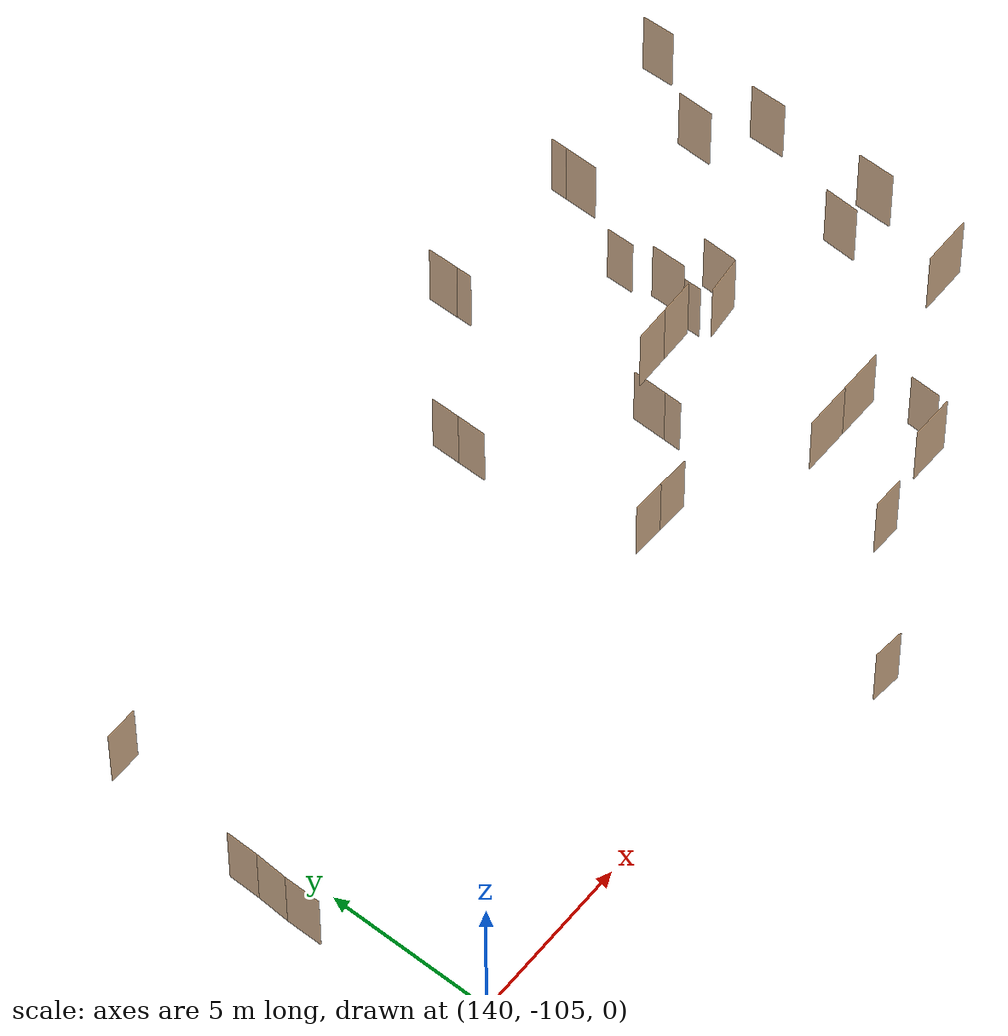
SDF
<sdf version="1.7">
 <world name="sim_world">
  <model name="puerta74">
   <pose>159.7936923329364 -103.79587595033634 0.0 0 0 3.1317567962634545</pose>
   <link name="right">
    <pose>0 0 1.11 0 0 0</pose>
    <visual name="right_visual">
     <geometry><box><size>1.256180677242002 0.03 2.2</size></box></geometry>
     <material>
      <ambient>0.5 0.25 0 0.6</ambient>
      <diffuse>0.5 0.25 0 0.6</diffuse>
      <pbr><metal><metalness>0.0</metalness></metal></pbr>
     </material>
    </visual>
    <collision name="right_collision">
     <geometry><box><size>1.256180677242002 0.03 2.2</size></box></geometry>
     <surface><contact><collide_bitmask>0x02</collide_bitmask></contact></surface>
    </collision>
    <inertial>
     <mass>50.0</mass>
     <inertia><ixx>20.17041666666667</ixx><iyy>26.741624557817403</iyy><izz>6.57870789115073</izz></inertia>
    </inertial>
   </link>
   <joint name="right_joint" type="revolute">
    <parent>world</parent>
    <child>right</child>
    <axis><xyz>0 0 -1</xyz><limit><lower>0</lower><upper>1.57</upper></limit></axis>
    <pose>0.6330903386210011 0 0 0 0 0</pose>
   </joint>
   <plugin name="register_component" filename="libregister_component.so">
    <component name="Door">
     <v_max_door>0.5</v_max_door>
     <a_max_door>0.3</a_max_door>
     <a_nom_door>0.15</a_nom_door>
     <dx_min_door>0.01</dx_min_door>
     <f_max_door>500.0</f_max_door>
     <ros_interface>true</ros_interface>
     <door name="puerta74" type="SwingDoor" left_joint_name="empty_joint" right_joint_name="right_joint"/>
    </component>
   </plugin>
  </model>
  <model name="puerta75">
   <pose>160.438532642766 -103.07871120292492 0.0 0 0 -1.5966220334203785</pose>
   <link name="right">
    <pose>0 0 1.11 0 0 0</pose>
    <visual name="right_visual">
     <geometry><box><size>0.9024168142661404 0.03 2.2</size></box></geometry>
     <material>
      <ambient>0.5 0.25 0 0.6</ambient>
      <diffuse>0.5 0.25 0 0.6</diffuse>
      <pbr><metal><metalness>0.0</metalness></metal></pbr>
     </material>
    </visual>
    <collision name="right_collision">
     <geometry><box><size>0.9024168142661404 0.03 2.2</size></box></geometry>
     <surface><contact><collide_bitmask>0x02</collide_bitmask></contact></surface>
    </collision>
    <inertial>
     <mass>50.0</mass>
     <inertia><ixx>20.17041666666667</ixx><iyy>23.559817111126044</iyy><izz>3.3969004444593742</izz></inertia>
    </inertial>
   </link>
   <joint name="right_joint" type="revolute">
    <parent>world</parent>
    <child>right</child>
    <axis><xyz>0 0 -1</xyz><limit><lower>0</lower><upper>1.57</upper></limit></axis>
    <pose>0.4562084071330702 0 0 0 0 0</pose>
   </joint>
   <plugin name="register_component" filename="libregister_component.so">
    <component name="Door">
     <v_max_door>0.5</v_max_door>
     <a_max_door>0.3</a_max_door>
     <a_nom_door>0.15</a_nom_door>
     <dx_min_door>0.01</dx_min_door>
     <f_max_door>500.0</f_max_door>
     <ros_interface>true</ros_interface>
     <door name="puerta75" type="SwingDoor" left_joint_name="empty_joint" right_joint_name="right_joint"/>
    </component>
   </plugin>
  </model>
  <model name="puerta76">
   <pose>159.75077730889134 -101.48174638903727 0.0 0 0 3.141592653589793</pose>
   <link name="right">
    <pose>0 0 1.11 0 0 0</pose>
    <visual name="right_visual">
     <geometry><box><size>1.3252042039894059 0.03 2.2</size></box></geometry>
     <material>
      <ambient>0.5 0.25 0 0.6</ambient>
      <diffuse>0.5 0.25 0 0.6</diffuse>
      <pbr><metal><metalness>0.0</metalness></metal></pbr>
     </material>
    </visual>
    <collision name="right_collision">
     <geometry><box><size>1.3252042039894059 0.03 2.2</size></box></geometry>
     <surface><contact><collide_bitmask>0x02</collide_bitmask></contact></surface>
    </collision>
    <inertial>
     <mass>50.0</mass>
     <inertia><ixx>20.17041666666667</ixx><iyy>27.484025759463318</iyy><izz>7.321109092796646</izz></inertia>
    </inertial>
   </link>
   <joint name="right_joint" type="revolute">
    <parent>world</parent>
    <child>right</child>
    <axis><xyz>0 0 -1</xyz><limit><lower>0</lower><upper>1.57</upper></limit></axis>
    <pose>0.6676021019947029 0 0 0 0 0</pose>
   </joint>
   <plugin name="register_component" filename="libregister_component.so">
    <component name="Door">
     <v_max_door>0.5</v_max_door>
     <a_max_door>0.3</a_max_door>
     <a_nom_door>0.15</a_nom_door>
     <dx_min_door>0.01</dx_min_door>
     <f_max_door>500.0</f_max_door>
     <ros_interface>true</ros_interface>
     <door name="puerta76" type="SwingDoor" left_joint_name="empty_joint" right_joint_name="right_joint"/>
    </component>
   </plugin>
  </model>
  <model name="puerta77">
   <pose>158.38399690338645 -101.48174638903727 0.0 0 0 0.0</pose>
   <link name="right">
    <pose>0 0 1.11 0 0 0</pose>
    <visual name="right_visual">
     <geometry><box><size>1.3883566070203892 0.03 2.2</size></box></geometry>
     <material>
      <ambient>0.5 0.25 0 0.6</ambient>
      <diffuse>0.5 0.25 0 0.6</diffuse>
      <pbr><metal><metalness>0.0</metalness></metal></pbr>
     </material>
    </visual>
    <collision name="right_collision">
     <geometry><box><size>1.3883566070203892 0.03 2.2</size></box></geometry>
     <surface><contact><collide_bitmask>0x02</collide_bitmask></contact></surface>
    </collision>
    <inertial>
     <mass>50.0</mass>
     <inertia><ixx>20.17041666666667</ixx><iyy>28.1980586177382</iyy><izz>8.03514195107153</izz></inertia>
    </inertial>
   </link>
   <joint name="right_joint" type="revolute">
    <parent>world</parent>
    <child>right</child>
    <axis><xyz>0 0 -1</xyz><limit><lower>0</lower><upper>1.57</upper></limit></axis>
    <pose>0.6991783035101946 0 0 0 0 0</pose>
   </joint>
   <plugin name="register_component" filename="libregister_component.so">
    <component name="Door">
     <v_max_door>0.5</v_max_door>
     <a_max_door>0.3</a_max_door>
     <a_nom_door>0.15</a_nom_door>
     <dx_min_door>0.01</dx_min_door>
     <f_max_door>500.0</f_max_door>
     <ros_interface>true</ros_interface>
     <door name="puerta77" type="SwingDoor" left_joint_name="empty_joint" right_joint_name="right_joint"/>
    </component>
   </plugin>
  </model>
  <model name="puerta78">
   <pose>159.89001973249628 -96.8544759949343 0.0 0 0 0.10396412360311867</pose>
   <link name="right">
    <pose>0 0 1.11 0 0 0</pose>
    <visual name="right_visual">
     <geometry><box><size>1.1166703581580366 0.03 2.2</size></box></geometry>
     <material>
      <ambient>0.5 0.25 0 0.6</ambient>
      <diffuse>0.5 0.25 0 0.6</diffuse>
      <pbr><metal><metalness>0.0</metalness></metal></pbr>
     </material>
    </visual>
    <collision name="right_collision">
     <geometry><box><size>1.1166703581580366 0.03 2.2</size></box></geometry>
     <surface><contact><collide_bitmask>0x02</collide_bitmask></contact></surface>
    </collision>
    <inertial>
     <mass>50.0</mass>
     <inertia><ixx>20.17041666666667</ixx><iyy>25.36230286995333</iyy><izz>5.199386203286657</izz></inertia>
    </inertial>
   </link>
   <joint name="right_joint" type="revolute">
    <parent>world</parent>
    <child>right</child>
    <axis><xyz>0 0 1</xyz><limit><lower>0</lower><upper>1.3955555555555557</upper></limit></axis>
    <pose>0.5633351790790183 0 0 0 0 0</pose>
   </joint>
   <plugin name="register_component" filename="libregister_component.so">
    <component name="Door">
     <v_max_door>0.5</v_max_door>
     <a_max_door>0.3</a_max_door>
     <a_nom_door>0.15</a_nom_door>
     <dx_min_door>0.01</dx_min_door>
     <f_max_door>500.0</f_max_door>
     <ros_interface>true</ros_interface>
     <door name="puerta78" type="SwingDoor" left_joint_name="empty_joint" right_joint_name="right_joint"/>
    </component>
   </plugin>
  </model>
  <model name="puerta79">
   <pose>160.46398714232214 -96.26128097139416 0.0 0 0 -1.596362178234018</pose>
   <link name="right">
    <pose>0 0 1.11 0 0 0</pose>
    <visual name="right_visual">
     <geometry><box><size>1.0598172473930818 0.03 2.2</size></box></geometry>
     <material>
      <ambient>0.5 0.25 0 0.6</ambient>
      <diffuse>0.5 0.25 0 0.6</diffuse>
      <pbr><metal><metalness>0.0</metalness></metal></pbr>
     </material>
    </visual>
    <collision name="right_collision">
     <geometry><box><size>1.0598172473930818 0.03 2.2</size></box></geometry>
     <surface><contact><collide_bitmask>0x02</collide_bitmask></contact></surface>
    </collision>
    <inertial>
     <mass>50.0</mass>
     <inertia><ixx>20.17041666666667</ixx><iyy>24.846719157799374</iyy><izz>4.683802491132703</izz></inertia>
    </inertial>
   </link>
   <joint name="right_joint" type="revolute">
    <parent>world</parent>
    <child>right</child>
    <axis><xyz>0 0 -1</xyz><limit><lower>0</lower><upper>1.57</upper></limit></axis>
    <pose>0.5349086236965409 0 0 0 0 0</pose>
   </joint>
   <plugin name="register_component" filename="libregister_component.so">
    <component name="Door">
     <v_max_door>0.5</v_max_door>
     <a_max_door>0.3</a_max_door>
     <a_nom_door>0.15</a_nom_door>
     <dx_min_door>0.01</dx_min_door>
     <f_max_door>500.0</f_max_door>
     <ros_interface>true</ros_interface>
     <door name="puerta79" type="SwingDoor" left_joint_name="empty_joint" right_joint_name="right_joint"/>
    </component>
   </plugin>
  </model>
  <model name="puerta80">
   <pose>159.1357461113518 -96.21222320861327 0.0 0 0 -1.5533127589746702</pose>
   <link name="right">
    <pose>0 0 1.11 0 0 0</pose>
    <visual name="right_visual">
     <geometry><box><size>0.8732167888799909 0.03 2.2</size></box></geometry>
     <material>
      <ambient>0.5 0.25 0 0.6</ambient>
      <diffuse>0.5 0.25 0 0.6</diffuse>
      <pbr><metal><metalness>0.0</metalness></metal></pbr>
     </material>
    </visual>
    <collision name="right_collision">
     <geometry><box><size>0.8732167888799909 0.03 2.2</size></box></geometry>
     <surface><contact><collide_bitmask>0x02</collide_bitmask></contact></surface>
    </collision>
    <inertial>
     <mass>50.0</mass>
     <inertia><ixx>20.17041666666667</ixx><iyy>23.34378150159118</iyy><izz>3.180864834924511</izz></inertia>
    </inertial>
   </link>
   <joint name="right_joint" type="revolute">
    <parent>world</parent>
    <child>right</child>
    <axis><xyz>0 0 1</xyz><limit><lower>0</lower><upper>1.57</upper></limit></axis>
    <pose>0.44160839443999544 0 0 0 0 0</pose>
   </joint>
   <plugin name="register_component" filename="libregister_component.so">
    <component name="Door">
     <v_max_door>0.5</v_max_door>
     <a_max_door>0.3</a_max_door>
     <a_nom_door>0.15</a_nom_door>
     <dx_min_door>0.01</dx_min_door>
     <f_max_door>500.0</f_max_door>
     <ros_interface>true</ros_interface>
     <door name="puerta80" type="SwingDoor" left_joint_name="empty_joint" right_joint_name="right_joint"/>
    </component>
   </plugin>
  </model>
  <model name="puerta81">
   <pose>159.12099933103045 -93.97853828062215 0.0 0 0 1.587739558421069</pose>
   <link name="right">
    <pose>0 0 1.11 0 0 0</pose>
    <visual name="right_visual">
     <geometry><box><size>0.8194308536880951 0.03 2.2</size></box></geometry>
     <material>
      <ambient>0.5 0.25 0 0.6</ambient>
      <diffuse>0.5 0.25 0 0.6</diffuse>
      <pbr><metal><metalness>0.0</metalness></metal></pbr>
     </material>
    </visual>
    <collision name="right_collision">
     <geometry><box><size>0.8194308536880951 0.03 2.2</size></box></geometry>
     <surface><contact><collide_bitmask>0x02</collide_bitmask></contact></surface>
    </collision>
    <inertial>
     <mass>50.0</mass>
     <inertia><ixx>20.17041666666667</ixx><iyy>22.964445516566673</iyy><izz>2.8015288499000013</izz></inertia>
    </inertial>
   </link>
   <joint name="right_joint" type="revolute">
    <parent>world</parent>
    <child>right</child>
    <axis><xyz>0 0 -1</xyz><limit><lower>0</lower><upper>1.57</upper></limit></axis>
    <pose>0.41471542684404755 0 0 0 0 0</pose>
   </joint>
   <plugin name="register_component" filename="libregister_component.so">
    <component name="Door">
     <v_max_door>0.5</v_max_door>
     <a_max_door>0.3</a_max_door>
     <a_nom_door>0.15</a_nom_door>
     <dx_min_door>0.01</dx_min_door>
     <f_max_door>500.0</f_max_door>
     <ros_interface>true</ros_interface>
     <door name="puerta81" type="SwingDoor" left_joint_name="empty_joint" right_joint_name="right_joint"/>
    </component>
   </plugin>
  </model>
  <model name="puerta105">
   <pose>152.07287980848113 -94.21486542774073 0.0 0 0 -1.5707963267948966</pose>
   <link name="right">
    <pose>0.43580838021028256 0 1.11 0 0 0</pose>
    <visual name="right_visual">
     <geometry><box><size>0.8616167604205651 0.03 2.2</size></box></geometry>
     <material>
      <ambient>0.5 0.25 0 0.6</ambient>
      <diffuse>0.5 0.25 0 0.6</diffuse>
      <pbr><metal><metalness>0.0</metalness></metal></pbr>
     </material>
    </visual>
    <collision name="right_collision">
     <geometry><box><size>0.8616167604205651 0.03 2.2</size></box></geometry>
     <surface><contact><collide_bitmask>0x02</collide_bitmask></contact></surface>
    </collision>
    <inertial>
     <mass>50.0</mass>
     <inertia><ixx>20.17041666666667</ixx><iyy>23.259931007656796</iyy><izz>3.097014340990123</izz></inertia>
    </inertial>
   </link>
   <joint name="right_joint" type="revolute">
    <parent>world</parent>
    <child>right</child>
    <axis><xyz>0 0 -1</xyz><limit><lower>0</lower><upper>1.57</upper></limit></axis>
    <pose>0.43580838021028256 0 0 0 0 0</pose>
   </joint>
   <link name="left">
    <pose>-0.43580838021028256 0 1.11 0 0 0</pose>
    <visual name="left_visual">
     <geometry><box><size>0.8616167604205651 0.03 2.2</size></box></geometry>
     <material>
      <ambient>0.5 0.25 0 0.6</ambient>
      <diffuse>0.5 0.25 0 0.6</diffuse>
      <pbr><metal><metalness>0.0</metalness></metal></pbr>
     </material>
    </visual>
    <collision name="left_collision">
     <geometry><box><size>0.8616167604205651 0.03 2.2</size></box></geometry>
     <surface><contact><collide_bitmask>0x02</collide_bitmask></contact></surface>
    </collision>
    <inertial>
     <mass>50.0</mass>
     <inertia><ixx>20.17041666666667</ixx><iyy>23.259931007656796</iyy><izz>3.097014340990123</izz></inertia>
    </inertial>
   </link>
   <joint name="left_joint" type="revolute">
    <parent>world</parent>
    <child>left</child>
    <axis><xyz>0 0 -1</xyz><limit><lower>-1.57</lower><upper>0</upper></limit></axis>
    <pose>-0.43580838021028256 0 0 0 0 0</pose>
   </joint>
   <plugin name="register_component" filename="libregister_component.so">
    <component name="Door">
     <v_max_door>0.5</v_max_door>
     <a_max_door>0.3</a_max_door>
     <a_nom_door>0.15</a_nom_door>
     <dx_min_door>0.01</dx_min_door>
     <f_max_door>500.0</f_max_door>
     <ros_interface>true</ros_interface>
     <door name="puerta105" type="DoubleSwingDoor" left_joint_name="left_joint" right_joint_name="right_joint"/>
    </component>
   </plugin>
  </model>
  <model name="puerta106">
   <pose>153.74871149743979 -99.59914422393224 0.0 0 0 3.1137868440150647</pose>
   <link name="right">
    <pose>0.48161280064913925 0 1.11 0 0 0</pose>
    <visual name="right_visual">
     <geometry><box><size>0.9532256012982785 0.03 2.2</size></box></geometry>
     <material>
      <ambient>0.5 0.25 0 0.6</ambient>
      <diffuse>0.5 0.25 0 0.6</diffuse>
      <pbr><metal><metalness>0.0</metalness></metal></pbr>
     </material>
    </visual>
    <collision name="right_collision">
     <geometry><box><size>0.9532256012982785 0.03 2.2</size></box></geometry>
     <surface><contact><collide_bitmask>0x02</collide_bitmask></contact></surface>
    </collision>
    <inertial>
     <mass>50.0</mass>
     <inertia><ixx>20.17041666666667</ixx><iyy>23.952662695710274</iyy><izz>3.7897460290436027</izz></inertia>
    </inertial>
   </link>
   <joint name="right_joint" type="revolute">
    <parent>world</parent>
    <child>right</child>
    <axis><xyz>0 0 -1</xyz><limit><lower>0</lower><upper>1.57</upper></limit></axis>
    <pose>0.48161280064913925 0 0 0 0 0</pose>
   </joint>
   <link name="left">
    <pose>-0.48161280064913925 0 1.11 0 0 0</pose>
    <visual name="left_visual">
     <geometry><box><size>0.9532256012982785 0.03 2.2</size></box></geometry>
     <material>
      <ambient>0.5 0.25 0 0.6</ambient>
      <diffuse>0.5 0.25 0 0.6</diffuse>
      <pbr><metal><metalness>0.0</metalness></metal></pbr>
     </material>
    </visual>
    <collision name="left_collision">
     <geometry><box><size>0.9532256012982785 0.03 2.2</size></box></geometry>
     <surface><contact><collide_bitmask>0x02</collide_bitmask></contact></surface>
    </collision>
    <inertial>
     <mass>50.0</mass>
     <inertia><ixx>20.17041666666667</ixx><iyy>23.952662695710274</iyy><izz>3.7897460290436027</izz></inertia>
    </inertial>
   </link>
   <joint name="left_joint" type="revolute">
    <parent>world</parent>
    <child>left</child>
    <axis><xyz>0 0 -1</xyz><limit><lower>-1.57</lower><upper>0</upper></limit></axis>
    <pose>-0.48161280064913925 0 0 0 0 0</pose>
   </joint>
   <plugin name="register_component" filename="libregister_component.so">
    <component name="Door">
     <v_max_door>0.5</v_max_door>
     <a_max_door>0.3</a_max_door>
     <a_nom_door>0.15</a_nom_door>
     <dx_min_door>0.01</dx_min_door>
     <f_max_door>500.0</f_max_door>
     <ros_interface>true</ros_interface>
     <door name="puerta106" type="DoubleSwingDoor" left_joint_name="left_joint" right_joint_name="right_joint"/>
    </component>
   </plugin>
  </model>
  <model name="puerta107">
   <pose>153.63307233705962 -107.09196016476 0.0 0 0 3.055489605000088</pose>
   <link name="right">
    <pose>0 0 1.11 0 0 0</pose>
    <visual name="right_visual">
     <geometry><box><size>0.913696730952834 0.03 2.2</size></box></geometry>
     <material>
      <ambient>0.5 0.25 0 0.6</ambient>
      <diffuse>0.5 0.25 0 0.6</diffuse>
      <pbr><metal><metalness>0.0</metalness></metal></pbr>
     </material>
    </visual>
    <collision name="right_collision">
     <geometry><box><size>0.913696730952834 0.03 2.2</size></box></geometry>
     <surface><contact><collide_bitmask>0x02</collide_bitmask></contact></surface>
    </collision>
    <inertial>
     <mass>50.0</mass>
     <inertia><ixx>20.17041666666667</ixx><iyy>23.645173817307903</iyy><izz>3.482257150641231</izz></inertia>
    </inertial>
   </link>
   <joint name="right_joint" type="revolute">
    <parent>world</parent>
    <child>right</child>
    <axis><xyz>0 0 1</xyz><limit><lower>0</lower><upper>1.57</upper></limit></axis>
    <pose>0.461848365476417 0 0 0 0 0</pose>
   </joint>
   <plugin name="register_component" filename="libregister_component.so">
    <component name="Door">
     <v_max_door>0.5</v_max_door>
     <a_max_door>0.3</a_max_door>
     <a_nom_door>0.15</a_nom_door>
     <dx_min_door>0.01</dx_min_door>
     <f_max_door>500.0</f_max_door>
     <ros_interface>true</ros_interface>
     <door name="puerta107" type="SwingDoor" left_joint_name="empty_joint" right_joint_name="right_joint"/>
    </component>
   </plugin>
  </model>
  <model name="puerta108">
   <pose>139.5671052133339 -93.43841904417299 0.0 0 0 0.00852679551711092</pose>
   <link name="right">
    <pose>0 0 1.11 0 0 0</pose>
    <visual name="right_visual">
     <geometry><box><size>0.9966042746061976 0.03 2.2</size></box></geometry>
     <material>
      <ambient>0.5 0.25 0 0.6</ambient>
      <diffuse>0.5 0.25 0 0.6</diffuse>
      <pbr><metal><metalness>0.0</metalness></metal></pbr>
     </material>
    </visual>
    <collision name="right_collision">
     <geometry><box><size>0.9966042746061976 0.03 2.2</size></box></geometry>
     <surface><contact><collide_bitmask>0x02</collide_bitmask></contact></surface>
    </collision>
    <inertial>
     <mass>50.0</mass>
     <inertia><ixx>20.17041666666667</ixx><iyy>24.305083667347276</iyy><izz>4.1421670006806055</izz></inertia>
    </inertial>
   </link>
   <joint name="right_joint" type="revolute">
    <parent>world</parent>
    <child>right</child>
    <axis><xyz>0 0 -1</xyz><limit><lower>0</lower><upper>1.57</upper></limit></axis>
    <pose>0.5033021373030988 0 0 0 0 0</pose>
   </joint>
   <plugin name="register_component" filename="libregister_component.so">
    <component name="Door">
     <v_max_door>0.5</v_max_door>
     <a_max_door>0.3</a_max_door>
     <a_nom_door>0.15</a_nom_door>
     <dx_min_door>0.01</dx_min_door>
     <f_max_door>500.0</f_max_door>
     <ros_interface>true</ros_interface>
     <door name="puerta108" type="SwingDoor" left_joint_name="empty_joint" right_joint_name="right_joint"/>
    </component>
   </plugin>
  </model>
  <model name="puerta158">
   <pose>138.77877305104778 -100.06268959394811 0.0 0 0 1.5707963267948966</pose>
   <link name="right">
    <pose>0 0 1.11 0 0 0</pose>
    <visual name="right_visual">
     <geometry><box><size>1.0825660239230268 0.03 2.2</size></box></geometry>
     <material>
      <ambient>0.5 0.25 0 0.6</ambient>
      <diffuse>0.5 0.25 0 0.6</diffuse>
      <pbr><metal><metalness>0.0</metalness></metal></pbr>
     </material>
    </visual>
    <collision name="right_collision">
     <geometry><box><size>1.0825660239230268 0.03 2.2</size></box></geometry>
     <surface><contact><collide_bitmask>0x02</collide_bitmask></contact></surface>
    </collision>
    <inertial>
     <mass>50.0</mass>
     <inertia><ixx>20.17041666666667</ixx><iyy>25.049788317302138</iyy><izz>4.886871650635465</izz></inertia>
    </inertial>
   </link>
   <joint name="right_joint" type="revolute">
    <parent>world</parent>
    <child>right</child>
    <axis><xyz>0 0 1</xyz><limit><lower>0</lower><upper>1.57</upper></limit></axis>
    <pose>0.5462830119615134 0 0 0 0 0</pose>
   </joint>
   <plugin name="register_component" filename="libregister_component.so">
    <component name="Door">
     <v_max_door>0.5</v_max_door>
     <a_max_door>0.3</a_max_door>
     <a_nom_door>0.15</a_nom_door>
     <dx_min_door>0.01</dx_min_door>
     <f_max_door>500.0</f_max_door>
     <ros_interface>true</ros_interface>
     <door name="puerta158" type="SwingDoor" left_joint_name="empty_joint" right_joint_name="right_joint"/>
    </component>
   </plugin>
  </model>
  <model name="puerta159">
   <pose>138.80753032451327 -99.02761708017954 0.0 0 0 1.5120304122943606</pose>
   <link name="right">
    <pose>0 0 1.11 0 0 0</pose>
    <visual name="right_visual">
     <geometry><box><size>0.969269437599189 0.03 2.2</size></box></geometry>
     <material>
      <ambient>0.5 0.25 0 0.6</ambient>
      <diffuse>0.5 0.25 0 0.6</diffuse>
      <pbr><metal><metalness>0.0</metalness></metal></pbr>
     </material>
    </visual>
    <collision name="right_collision">
     <geometry><box><size>0.969269437599189 0.03 2.2</size></box></geometry>
     <surface><contact><collide_bitmask>0x02</collide_bitmask></contact></surface>
    </collision>
    <inertial>
     <mass>50.0</mass>
     <inertia><ixx>20.17041666666667</ixx><iyy>24.08118017776604</iyy><izz>3.9182635110993678</izz></inertia>
    </inertial>
   </link>
   <joint name="right_joint" type="revolute">
    <parent>world</parent>
    <child>right</child>
    <axis><xyz>0 0 1</xyz><limit><lower>0</lower><upper>1.57</upper></limit></axis>
    <pose>0.4896347187995945 0 0 0 0 0</pose>
   </joint>
   <plugin name="register_component" filename="libregister_component.so">
    <component name="Door">
     <v_max_door>0.5</v_max_door>
     <a_max_door>0.3</a_max_door>
     <a_nom_door>0.15</a_nom_door>
     <dx_min_door>0.01</dx_min_door>
     <f_max_door>500.0</f_max_door>
     <ros_interface>true</ros_interface>
     <door name="puerta159" type="SwingDoor" left_joint_name="empty_joint" right_joint_name="right_joint"/>
    </component>
   </plugin>
  </model>
  <model name="puerta160">
   <pose>138.84232515283213 -98.04970148814152 0.0 0 0 1.5584533985235027</pose>
   <link name="right">
    <pose>0 0 1.11 0 0 0</pose>
    <visual name="right_visual">
     <geometry><box><size>0.9683267025144926 0.03 2.2</size></box></geometry>
     <material>
      <ambient>0.5 0.25 0 0.6</ambient>
      <diffuse>0.5 0.25 0 0.6</diffuse>
      <pbr><metal><metalness>0.0</metalness></metal></pbr>
     </material>
    </visual>
    <collision name="right_collision">
     <geometry><box><size>0.9683267025144926 0.03 2.2</size></box></geometry>
     <surface><contact><collide_bitmask>0x02</collide_bitmask></contact></surface>
    </collision>
    <inertial>
     <mass>50.0</mass>
     <inertia><ixx>20.17041666666667</ixx><iyy>24.073569178344133</iyy><izz>3.9106525116774615</izz></inertia>
    </inertial>
   </link>
   <joint name="right_joint" type="revolute">
    <parent>world</parent>
    <child>right</child>
    <axis><xyz>0 0 1</xyz><limit><lower>0</lower><upper>1.57</upper></limit></axis>
    <pose>0.4891633512572463 0 0 0 0 0</pose>
   </joint>
   <plugin name="register_component" filename="libregister_component.so">
    <component name="Door">
     <v_max_door>0.5</v_max_door>
     <a_max_door>0.3</a_max_door>
     <a_nom_door>0.15</a_nom_door>
     <dx_min_door>0.01</dx_min_door>
     <f_max_door>500.0</f_max_door>
     <ros_interface>true</ros_interface>
     <door name="puerta160" type="SwingDoor" left_joint_name="empty_joint" right_joint_name="right_joint"/>
    </component>
   </plugin>
  </model>
  <model name="puerta171">
   <pose>156.02320777182666 -97.68711160851396 0.0 0 0 1.5575365947351327</pose>
   <link name="right">
    <pose>0.2580808248521973 0 1.11 0 0 0</pose>
    <visual name="right_visual">
     <geometry><box><size>1.022323299408789 0.03 2.2</size></box></geometry>
     <material>
      <ambient>0.5 0.25 0 0.6</ambient>
      <diffuse>0.5 0.25 0 0.6</diffuse>
      <pbr><metal><metalness>0.0</metalness></metal></pbr>
     </material>
    </visual>
    <collision name="right_collision">
     <geometry><box><size>1.022323299408789 0.03 2.2</size></box></geometry>
     <surface><contact><collide_bitmask>0x02</collide_bitmask></contact></surface>
    </collision>
    <inertial>
     <mass>50.0</mass>
     <inertia><ixx>20.17041666666667</ixx><iyy>24.52143720214197</iyy><izz>4.358520535475302</izz></inertia>
    </inertial>
   </link>
   <joint name="right_joint" type="revolute">
    <parent>world</parent>
    <child>right</child>
    <axis><xyz>0 0 -1</xyz><limit><lower>0</lower><upper>1.57</upper></limit></axis>
    <pose>0.5161616497043945 0 0 0 0 0</pose>
   </joint>
   <link name="left">
    <pose>-0.5161616497043945 0 1.11 0 0 0</pose>
    <visual name="left_visual">
     <geometry><box><size>0.5061616497043946 0.03 2.2</size></box></geometry>
     <material>
      <ambient>0.5 0.25 0 0.6</ambient>
      <diffuse>0.5 0.25 0 0.6</diffuse>
      <pbr><metal><metalness>0.0</metalness></metal></pbr>
     </material>
    </visual>
    <collision name="left_collision">
     <geometry><box><size>0.5061616497043946 0.03 2.2</size></box></geometry>
     <surface><contact><collide_bitmask>0x02</collide_bitmask></contact></surface>
    </collision>
    <inertial>
     <mass>50.0</mass>
     <inertia><ixx>20.17041666666667</ixx><iyy>21.234165065131148</iyy><izz>1.0712483984644763</izz></inertia>
    </inertial>
   </link>
   <joint name="left_joint" type="revolute">
    <parent>world</parent>
    <child>left</child>
    <axis><xyz>0 0 -1</xyz><limit><lower>-1.57</lower><upper>0</upper></limit></axis>
    <pose>-0.2580808248521973 0 0 0 0 0</pose>
   </joint>
   <plugin name="register_component" filename="libregister_component.so">
    <component name="Door">
     <v_max_door>0.5</v_max_door>
     <a_max_door>0.3</a_max_door>
     <a_nom_door>0.15</a_nom_door>
     <dx_min_door>0.01</dx_min_door>
     <f_max_door>500.0</f_max_door>
     <ros_interface>true</ros_interface>
     <door name="puerta171" type="DoubleSwingDoor" left_joint_name="left_joint" right_joint_name="right_joint"/>
    </component>
   </plugin>
  </model>
  <model name="puerta230">
   <pose>151.5194652632749 -94.49645380366556 8.0 0 0 1.5849158112830648</pose>
   <link name="right">
    <pose>0.21981165551356635 0 1.11 0 0 0</pose>
    <visual name="right_visual">
     <geometry><box><size>0.8692466220542653 0.03 2.2</size></box></geometry>
     <material>
      <ambient>0.5 0.25 0 0.6</ambient>
      <diffuse>0.5 0.25 0 0.6</diffuse>
      <pbr><metal><metalness>0.0</metalness></metal></pbr>
     </material>
    </visual>
    <collision name="right_collision">
     <geometry><box><size>0.8692466220542653 0.03 2.2</size></box></geometry>
     <surface><contact><collide_bitmask>0x02</collide_bitmask></contact></surface>
    </collision>
    <inertial>
     <mass>50.0</mass>
     <inertia><ixx>20.17041666666667</ixx><iyy>23.3149570414698</iyy><izz>3.152040374803128</izz></inertia>
    </inertial>
   </link>
   <joint name="right_joint" type="revolute">
    <parent>world</parent>
    <child>right</child>
    <axis><xyz>0 0 1</xyz><limit><lower>0</lower><upper>1.57</upper></limit></axis>
    <pose>0.43962331102713265 0 0 0 0 0</pose>
   </joint>
   <link name="left">
    <pose>-0.43962331102713265 0 1.11 0 0 0</pose>
    <visual name="left_visual">
     <geometry><box><size>0.4296233110271327 0.03 2.2</size></box></geometry>
     <material>
      <ambient>0.5 0.25 0 0.6</ambient>
      <diffuse>0.5 0.25 0 0.6</diffuse>
      <pbr><metal><metalness>0.0</metalness></metal></pbr>
     </material>
    </visual>
    <collision name="left_collision">
     <geometry><box><size>0.4296233110271327 0.03 2.2</size></box></geometry>
     <surface><contact><collide_bitmask>0x02</collide_bitmask></contact></surface>
    </collision>
    <inertial>
     <mass>50.0</mass>
     <inertia><ixx>20.17041666666667</ixx><iyy>20.93573412240799</iyy><izz>0.7728174557413184</izz></inertia>
    </inertial>
   </link>
   <joint name="left_joint" type="revolute">
    <parent>world</parent>
    <child>left</child>
    <axis><xyz>0 0 1</xyz><limit><lower>-1.57</lower><upper>0</upper></limit></axis>
    <pose>-0.21981165551356635 0 0 0 0 0</pose>
   </joint>
   <plugin name="register_component" filename="libregister_component.so">
    <component name="Door">
     <v_max_door>0.5</v_max_door>
     <a_max_door>0.3</a_max_door>
     <a_nom_door>0.15</a_nom_door>
     <dx_min_door>0.01</dx_min_door>
     <f_max_door>500.0</f_max_door>
     <ros_interface>true</ros_interface>
     <door name="puerta230" type="DoubleSwingDoor" left_joint_name="left_joint" right_joint_name="right_joint"/>
    </component>
   </plugin>
  </model>
  <model name="puerta231">
   <pose>156.06244467011624 -94.80387770275138 8.0 0 0 1.5711328227420887</pose>
   <link name="right">
    <pose>0.4755015423965929 0 1.11 0 0 0</pose>
    <visual name="right_visual">
     <geometry><box><size>0.4655015423965929 0.03 2.2</size></box></geometry>
     <material>
      <ambient>0.5 0.25 0 0.6</ambient>
      <diffuse>0.5 0.25 0 0.6</diffuse>
      <pbr><metal><metalness>0.0</metalness></metal></pbr>
     </material>
    </visual>
    <collision name="right_collision">
     <geometry><box><size>0.4655015423965929 0.03 2.2</size></box></geometry>
     <surface><contact><collide_bitmask>0x02</collide_bitmask></contact></surface>
    </collision>
    <inertial>
     <mass>50.0</mass>
     <inertia><ixx>20.17041666666667</ixx><iyy>21.0695486915567</iyy><izz>0.9066320248900293</izz></inertia>
    </inertial>
   </link>
   <joint name="right_joint" type="revolute">
    <parent>world</parent>
    <child>right</child>
    <axis><xyz>0 0 -1</xyz><limit><lower>0</lower><upper>1.57</upper></limit></axis>
    <pose>0.23775077119829646 0 0 0 0 0</pose>
   </joint>
   <link name="left">
    <pose>-0.23775077119829646 0 1.11 0 0 0</pose>
    <visual name="left_visual">
     <geometry><box><size>0.9410030847931858 0.03 2.2</size></box></geometry>
     <material>
      <ambient>0.5 0.25 0 0.6</ambient>
      <diffuse>0.5 0.25 0 0.6</diffuse>
      <pbr><metal><metalness>0.0</metalness></metal></pbr>
     </material>
    </visual>
    <collision name="left_collision">
     <geometry><box><size>0.9410030847931858 0.03 2.2</size></box></geometry>
     <surface><contact><collide_bitmask>0x02</collide_bitmask></contact></surface>
    </collision>
    <inertial>
     <mass>50.0</mass>
     <inertia><ixx>20.17041666666667</ixx><iyy>23.856195023292887</iyy><izz>3.6932783566262155</izz></inertia>
    </inertial>
   </link>
   <joint name="left_joint" type="revolute">
    <parent>world</parent>
    <child>left</child>
    <axis><xyz>0 0 -1</xyz><limit><lower>-1.57</lower><upper>0</upper></limit></axis>
    <pose>-0.4755015423965929 0 0 0 0 0</pose>
   </joint>
   <plugin name="register_component" filename="libregister_component.so">
    <component name="Door">
     <v_max_door>0.5</v_max_door>
     <a_max_door>0.3</a_max_door>
     <a_nom_door>0.15</a_nom_door>
     <dx_min_door>0.01</dx_min_door>
     <f_max_door>500.0</f_max_door>
     <ros_interface>true</ros_interface>
     <door name="puerta231" type="DoubleSwingDoor" left_joint_name="left_joint" right_joint_name="right_joint"/>
    </component>
   </plugin>
  </model>
  <model name="puerta234">
   <pose>160.5128613454774 -94.00768718263613 8.0 0 0 1.60863275053303</pose>
   <link name="right">
    <pose>0 0 1.11 0 0 0</pose>
    <visual name="right_visual">
     <geometry><box><size>0.9215310130594871 0.03 2.2</size></box></geometry>
     <material>
      <ambient>0.5 0.25 0 0.6</ambient>
      <diffuse>0.5 0.25 0 0.6</diffuse>
      <pbr><metal><metalness>0.0</metalness></metal></pbr>
     </material>
    </visual>
    <collision name="right_collision">
     <geometry><box><size>0.9215310130594871 0.03 2.2</size></box></geometry>
     <surface><contact><collide_bitmask>0x02</collide_bitmask></contact></surface>
    </collision>
    <inertial>
     <mass>50.0</mass>
     <inertia><ixx>20.17041666666667</ixx><iyy>23.705080866793523</iyy><izz>3.5421642001268534</izz></inertia>
    </inertial>
   </link>
   <joint name="right_joint" type="revolute">
    <parent>world</parent>
    <child>right</child>
    <axis><xyz>0 0 1</xyz><limit><lower>0</lower><upper>1.57</upper></limit></axis>
    <pose>0.4657655065297436 0 0 0 0 0</pose>
   </joint>
   <plugin name="register_component" filename="libregister_component.so">
    <component name="Door">
     <v_max_door>0.5</v_max_door>
     <a_max_door>0.3</a_max_door>
     <a_nom_door>0.15</a_nom_door>
     <dx_min_door>0.01</dx_min_door>
     <f_max_door>500.0</f_max_door>
     <ros_interface>true</ros_interface>
     <door name="puerta234" type="SwingDoor" left_joint_name="empty_joint" right_joint_name="right_joint"/>
    </component>
   </plugin>
  </model>
  <model name="puerta235">
   <pose>159.19754000572783 -96.24096183791784 8.0 0 0 1.557459647387321</pose>
   <link name="right">
    <pose>0 0 1.11 0 0 0</pose>
    <visual name="right_visual">
     <geometry><box><size>1.0209481438985406 0.03 2.2</size></box></geometry>
     <material>
      <ambient>0.5 0.25 0 0.6</ambient>
      <diffuse>0.5 0.25 0 0.6</diffuse>
      <pbr><metal><metalness>0.0</metalness></metal></pbr>
     </material>
    </visual>
    <collision name="right_collision">
     <geometry><box><size>1.0209481438985406 0.03 2.2</size></box></geometry>
     <surface><contact><collide_bitmask>0x02</collide_bitmask></contact></surface>
    </collision>
    <inertial>
     <mass>50.0</mass>
     <inertia><ixx>20.17041666666667</ixx><iyy>24.509729635541152</iyy><izz>4.34681296887448</izz></inertia>
    </inertial>
   </link>
   <joint name="right_joint" type="revolute">
    <parent>world</parent>
    <child>right</child>
    <axis><xyz>0 0 -1</xyz><limit><lower>0</lower><upper>1.57</upper></limit></axis>
    <pose>0.5154740719492703 0 0 0 0 0</pose>
   </joint>
   <plugin name="register_component" filename="libregister_component.so">
    <component name="Door">
     <v_max_door>0.5</v_max_door>
     <a_max_door>0.3</a_max_door>
     <a_nom_door>0.15</a_nom_door>
     <dx_min_door>0.01</dx_min_door>
     <f_max_door>500.0</f_max_door>
     <ros_interface>true</ros_interface>
     <door name="puerta235" type="SwingDoor" left_joint_name="empty_joint" right_joint_name="right_joint"/>
    </component>
   </plugin>
  </model>
  <model name="puerta236">
   <pose>160.54314611293395 -97.53911979402724 8.0 0 0 1.5935977572765594</pose>
   <link name="right">
    <pose>0 0 1.11 0 0 0</pose>
    <visual name="right_visual">
     <geometry><box><size>1.025867885911034 0.03 2.2</size></box></geometry>
     <material>
      <ambient>0.5 0.25 0 0.6</ambient>
      <diffuse>0.5 0.25 0 0.6</diffuse>
      <pbr><metal><metalness>0.0</metalness></metal></pbr>
     </material>
    </visual>
    <collision name="right_collision">
     <geometry><box><size>1.025867885911034 0.03 2.2</size></box></geometry>
     <surface><contact><collide_bitmask>0x02</collide_bitmask></contact></surface>
    </collision>
    <inertial>
     <mass>50.0</mass>
     <inertia><ixx>20.17041666666667</ixx><iyy>24.55168716393156</iyy><izz>4.388770497264892</izz></inertia>
    </inertial>
   </link>
   <joint name="right_joint" type="revolute">
    <parent>world</parent>
    <child>right</child>
    <axis><xyz>0 0 1</xyz><limit><lower>0</lower><upper>1.57</upper></limit></axis>
    <pose>0.517933942955517 0 0 0 0 0</pose>
   </joint>
   <plugin name="register_component" filename="libregister_component.so">
    <component name="Door">
     <v_max_door>0.5</v_max_door>
     <a_max_door>0.3</a_max_door>
     <a_nom_door>0.15</a_nom_door>
     <dx_min_door>0.01</dx_min_door>
     <f_max_door>500.0</f_max_door>
     <ros_interface>true</ros_interface>
     <door name="puerta236" type="SwingDoor" left_joint_name="empty_joint" right_joint_name="right_joint"/>
    </component>
   </plugin>
  </model>
  <model name="puerta237">
   <pose>160.55593356049297 -100.9658278873764 8.0 0 0 1.5711328227421002</pose>
   <link name="right">
    <pose>0 0 1.11 0 0 0</pose>
    <visual name="right_visual">
     <geometry><box><size>1.0604885912434292 0.03 2.2</size></box></geometry>
     <material>
      <ambient>0.5 0.25 0 0.6</ambient>
      <diffuse>0.5 0.25 0 0.6</diffuse>
      <pbr><metal><metalness>0.0</metalness></metal></pbr>
     </material>
    </visual>
    <collision name="right_collision">
     <geometry><box><size>1.0604885912434292 0.03 2.2</size></box></geometry>
     <surface><contact><collide_bitmask>0x02</collide_bitmask></contact></surface>
    </collision>
    <inertial>
     <mass>50.0</mass>
     <inertia><ixx>20.17041666666667</ixx><iyy>24.852650217322807</iyy><izz>4.689733550656137</izz></inertia>
    </inertial>
   </link>
   <joint name="right_joint" type="revolute">
    <parent>world</parent>
    <child>right</child>
    <axis><xyz>0 0 1</xyz><limit><lower>0</lower><upper>1.57</upper></limit></axis>
    <pose>0.5352442956217146 0 0 0 0 0</pose>
   </joint>
   <plugin name="register_component" filename="libregister_component.so">
    <component name="Door">
     <v_max_door>0.5</v_max_door>
     <a_max_door>0.3</a_max_door>
     <a_nom_door>0.15</a_nom_door>
     <dx_min_door>0.01</dx_min_door>
     <f_max_door>500.0</f_max_door>
     <ros_interface>true</ros_interface>
     <door name="puerta237" type="SwingDoor" left_joint_name="empty_joint" right_joint_name="right_joint"/>
    </component>
   </plugin>
  </model>
  <model name="puerta238">
   <pose>159.17477770060998 -100.93467154794564 8.0 0 0 1.5360370392702274</pose>
   <link name="right">
    <pose>0 0 1.11 0 0 0</pose>
    <visual name="right_visual">
     <geometry><box><size>0.9757207501129597 0.03 2.2</size></box></geometry>
     <material>
      <ambient>0.5 0.25 0 0.6</ambient>
      <diffuse>0.5 0.25 0 0.6</diffuse>
      <pbr><metal><metalness>0.0</metalness></metal></pbr>
     </material>
    </visual>
    <collision name="right_collision">
     <geometry><box><size>0.9757207501129597 0.03 2.2</size></box></geometry>
     <surface><contact><collide_bitmask>0x02</collide_bitmask></contact></surface>
    </collision>
    <inertial>
     <mass>50.0</mass>
     <inertia><ixx>20.17041666666667</ixx><iyy>24.13346242583749</iyy><izz>3.97054575917082</izz></inertia>
    </inertial>
   </link>
   <joint name="right_joint" type="revolute">
    <parent>world</parent>
    <child>right</child>
    <axis><xyz>0 0 -1</xyz><limit><lower>0</lower><upper>1.57</upper></limit></axis>
    <pose>0.49286037505647984 0 0 0 0 0</pose>
   </joint>
   <plugin name="register_component" filename="libregister_component.so">
    <component name="Door">
     <v_max_door>0.5</v_max_door>
     <a_max_door>0.3</a_max_door>
     <a_nom_door>0.15</a_nom_door>
     <dx_min_door>0.01</dx_min_door>
     <f_max_door>500.0</f_max_door>
     <ros_interface>true</ros_interface>
     <door name="puerta238" type="SwingDoor" left_joint_name="empty_joint" right_joint_name="right_joint"/>
    </component>
   </plugin>
  </model>
  <model name="puerta239">
   <pose>159.85764396915945 -103.7295528139241 8.0 0 0 -3.132951850270519</pose>
   <link name="right">
    <pose>0 0 1.11 0 0 0</pose>
    <visual name="right_visual">
     <geometry><box><size>1.3884872886669104 0.03 2.2</size></box></geometry>
     <material>
      <ambient>0.5 0.25 0 0.6</ambient>
      <diffuse>0.5 0.25 0 0.6</diffuse>
      <pbr><metal><metalness>0.0</metalness></metal></pbr>
     </material>
    </visual>
    <collision name="right_collision">
     <geometry><box><size>1.3884872886669104 0.03 2.2</size></box></geometry>
     <surface><contact><collide_bitmask>0x02</collide_bitmask></contact></surface>
    </collision>
    <inertial>
     <mass>50.0</mass>
     <inertia><ixx>20.17041666666667</ixx><iyy>28.199570628289955</iyy><izz>8.036653961623285</izz></inertia>
    </inertial>
   </link>
   <joint name="right_joint" type="revolute">
    <parent>world</parent>
    <child>right</child>
    <axis><xyz>0 0 1</xyz><limit><lower>0</lower><upper>1.57</upper></limit></axis>
    <pose>0.6992436443334552 0 0 0 0 0</pose>
   </joint>
   <plugin name="register_component" filename="libregister_component.so">
    <component name="Door">
     <v_max_door>0.5</v_max_door>
     <a_max_door>0.3</a_max_door>
     <a_nom_door>0.15</a_nom_door>
     <dx_min_door>0.01</dx_min_door>
     <f_max_door>500.0</f_max_door>
     <ros_interface>true</ros_interface>
     <door name="puerta239" type="SwingDoor" left_joint_name="empty_joint" right_joint_name="right_joint"/>
    </component>
   </plugin>
  </model>
  <model name="puerta240">
   <pose>153.02309556805463 -107.1198118125581 8.0 0 0 3.133349894489784</pose>
   <link name="right">
    <pose>0 0 1.11 0 0 0</pose>
    <visual name="right_visual">
     <geometry><box><size>0.8875418415898482 0.03 2.2</size></box></geometry>
     <material>
      <ambient>0.5 0.25 0 0.6</ambient>
      <diffuse>0.5 0.25 0 0.6</diffuse>
      <pbr><metal><metalness>0.0</metalness></metal></pbr>
     </material>
    </visual>
    <collision name="right_collision">
     <geometry><box><size>0.8875418415898482 0.03 2.2</size></box></geometry>
     <surface><contact><collide_bitmask>0x02</collide_bitmask></contact></surface>
    </collision>
    <inertial>
     <mass>50.0</mass>
     <inertia><ixx>20.17041666666667</ixx><iyy>23.44887716905292</iyy><izz>3.2859605023862466</izz></inertia>
    </inertial>
   </link>
   <joint name="right_joint" type="revolute">
    <parent>world</parent>
    <child>right</child>
    <axis><xyz>0 0 1</xyz><limit><lower>0</lower><upper>1.57</upper></limit></axis>
    <pose>0.4487709207949241 0 0 0 0 0</pose>
   </joint>
   <plugin name="register_component" filename="libregister_component.so">
    <component name="Door">
     <v_max_door>0.5</v_max_door>
     <a_max_door>0.3</a_max_door>
     <a_nom_door>0.15</a_nom_door>
     <dx_min_door>0.01</dx_min_door>
     <f_max_door>500.0</f_max_door>
     <ros_interface>true</ros_interface>
     <door name="puerta240" type="SwingDoor" left_joint_name="empty_joint" right_joint_name="right_joint"/>
    </component>
   </plugin>
  </model>
  <model name="puerta241">
   <pose>153.77865219800773 -99.54133020475706 8.0 0 0 0.028188219147991782</pose>
   <link name="right">
    <pose>0.49710466942940534 0 1.11 0 0 0</pose>
    <visual name="right_visual">
     <geometry><box><size>0.9842093388588107 0.03 2.2</size></box></geometry>
     <material>
      <ambient>0.5 0.25 0 0.6</ambient>
      <diffuse>0.5 0.25 0 0.6</diffuse>
      <pbr><metal><metalness>0.0</metalness></metal></pbr>
     </material>
    </visual>
    <collision name="right_collision">
     <geometry><box><size>0.9842093388588107 0.03 2.2</size></box></geometry>
     <surface><contact><collide_bitmask>0x02</collide_bitmask></contact></surface>
    </collision>
    <inertial>
     <mass>50.0</mass>
     <inertia><ixx>20.17041666666667</ixx><iyy>24.202783427903743</iyy><izz>4.0398667612370724</izz></inertia>
    </inertial>
   </link>
   <joint name="right_joint" type="revolute">
    <parent>world</parent>
    <child>right</child>
    <axis><xyz>0 0 1</xyz><limit><lower>0</lower><upper>1.57</upper></limit></axis>
    <pose>0.49710466942940534 0 0 0 0 0</pose>
   </joint>
   <link name="left">
    <pose>-0.49710466942940534 0 1.11 0 0 0</pose>
    <visual name="left_visual">
     <geometry><box><size>0.9842093388588107 0.03 2.2</size></box></geometry>
     <material>
      <ambient>0.5 0.25 0 0.6</ambient>
      <diffuse>0.5 0.25 0 0.6</diffuse>
      <pbr><metal><metalness>0.0</metalness></metal></pbr>
     </material>
    </visual>
    <collision name="left_collision">
     <geometry><box><size>0.9842093388588107 0.03 2.2</size></box></geometry>
     <surface><contact><collide_bitmask>0x02</collide_bitmask></contact></surface>
    </collision>
    <inertial>
     <mass>50.0</mass>
     <inertia><ixx>20.17041666666667</ixx><iyy>24.202783427903743</iyy><izz>4.0398667612370724</izz></inertia>
    </inertial>
   </link>
   <joint name="left_joint" type="revolute">
    <parent>world</parent>
    <child>left</child>
    <axis><xyz>0 0 1</xyz><limit><lower>-1.57</lower><upper>0</upper></limit></axis>
    <pose>-0.49710466942940534 0 0 0 0 0</pose>
   </joint>
   <plugin name="register_component" filename="libregister_component.so">
    <component name="Door">
     <v_max_door>0.5</v_max_door>
     <a_max_door>0.3</a_max_door>
     <a_nom_door>0.15</a_nom_door>
     <dx_min_door>0.01</dx_min_door>
     <f_max_door>500.0</f_max_door>
     <ros_interface>true</ros_interface>
     <door name="puerta241" type="DoubleSwingDoor" left_joint_name="left_joint" right_joint_name="right_joint"/>
    </component>
   </plugin>
  </model>
  <model name="puerta242">
   <pose>155.11664938624563 -98.6096882320491 8.0 0 0 1.584190121078013</pose>
   <link name="right">
    <pose>0 0 1.11 0 0 0</pose>
    <visual name="right_visual">
     <geometry><box><size>0.9825618881464254 0.03 2.2</size></box></geometry>
     <material>
      <ambient>0.5 0.25 0 0.6</ambient>
      <diffuse>0.5 0.25 0 0.6</diffuse>
      <pbr><metal><metalness>0.0</metalness></metal></pbr>
     </material>
    </visual>
    <collision name="right_collision">
     <geometry><box><size>0.9825618881464254 0.03 2.2</size></box></geometry>
     <surface><contact><collide_bitmask>0x02</collide_bitmask></contact></surface>
    </collision>
    <inertial>
     <mass>50.0</mass>
     <inertia><ixx>20.17041666666667</ixx><iyy>24.18928276682446</iyy><izz>4.026366100157786</izz></inertia>
    </inertial>
   </link>
   <joint name="right_joint" type="revolute">
    <parent>world</parent>
    <child>right</child>
    <axis><xyz>0 0 1</xyz><limit><lower>0</lower><upper>1.57</upper></limit></axis>
    <pose>0.4962809440732127 0 0 0 0 0</pose>
   </joint>
   <plugin name="register_component" filename="libregister_component.so">
    <component name="Door">
     <v_max_door>0.5</v_max_door>
     <a_max_door>0.3</a_max_door>
     <a_nom_door>0.15</a_nom_door>
     <dx_min_door>0.01</dx_min_door>
     <f_max_door>500.0</f_max_door>
     <ros_interface>true</ros_interface>
     <door name="puerta242" type="SwingDoor" left_joint_name="empty_joint" right_joint_name="right_joint"/>
    </component>
   </plugin>
  </model>
 </world>
</sdf>
